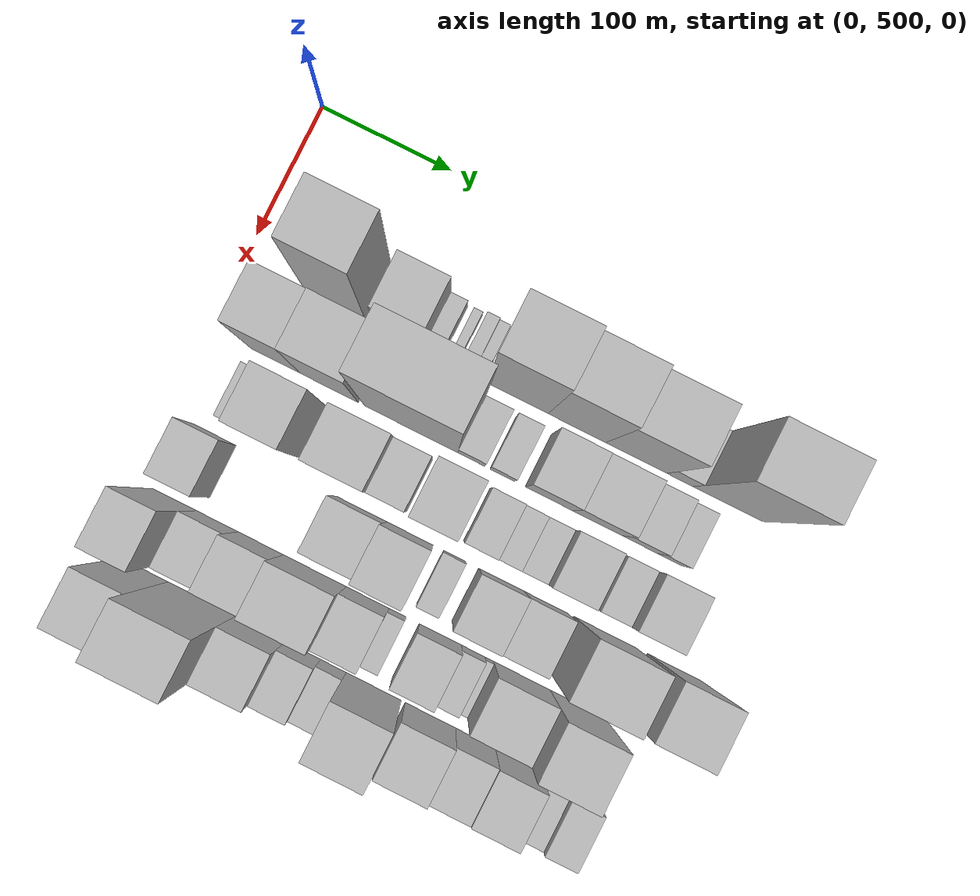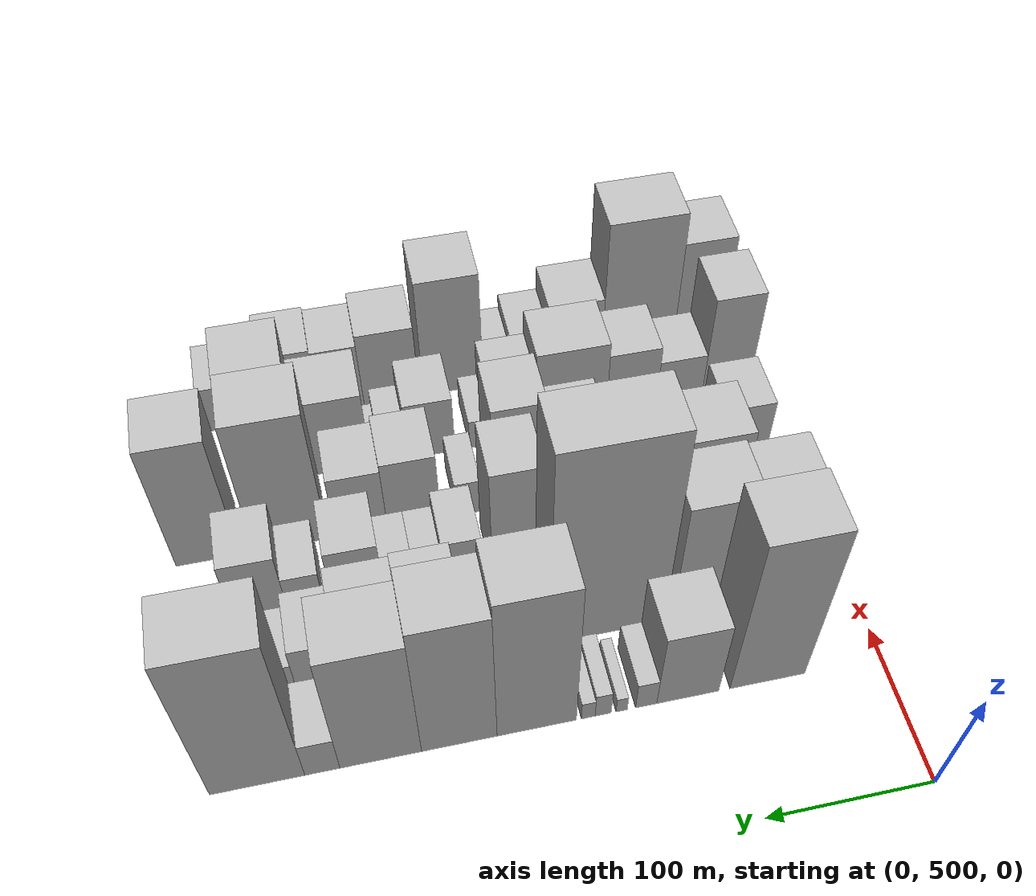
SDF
<sdf version="1.6">
 <world name="default">
  <model name="building_46">
   <static>1</static>
   <pose>100.0000 571.7592 0 0.000000 0.000000 0.000000</pose>
   <link name="link">
    <pose>0 0 76.50 0 0 0</pose>
    <collision name="collision"><geometry><box><size>40.0000 46.3501 153.0000</size></box></geometry></collision>
    <visual name="visual">
     <cast_shadows>0</cast_shadows>
     <geometry><box><size>40.0000 46.3501 153.0000</size></box></geometry>
     <material>
      <script>
       <uri>model://HANNAS_wall/materials/scripts</uri>
       <uri>model://HANNAS_wall/materials/textures</uri>
       <name>vrc/HANNAS_wall</name>
      </script>
     </material>
    </visual>
   </link>
  </model>
  <model name="building_47">
   <static>1</static>
   <pose>100.0000 620.8621 0 0.000000 0.000000 0.000000</pose>
   <link name="link">
    <pose>0 0 37.50 0 0 0</pose>
    <collision name="collision"><geometry><box><size>40.0000 37.8558 75.0000</size></box></geometry></collision>
    <visual name="visual">
     <cast_shadows>0</cast_shadows>
     <geometry><box><size>40.0000 37.8558 75.0000</size></box></geometry>
     <material>
      <script>
       <uri>model://HANNAS_wall/materials/scripts</uri>
       <uri>model://HANNAS_wall/materials/textures</uri>
       <name>vrc/HANNAS_wall</name>
      </script>
     </material>
    </visual>
   </link>
  </model>
  <model name="building_48">
   <static>1</static>
   <pose>100.0000 646.1864 0 0.000000 0.000000 0.000000</pose>
   <link name="link">
    <pose>0 0 13.50 0 0 0</pose>
    <collision name="collision"><geometry><box><size>40.0000 12.7928 27.0000</size></box></geometry></collision>
    <visual name="visual">
     <cast_shadows>0</cast_shadows>
     <geometry><box><size>40.0000 12.7928 27.0000</size></box></geometry>
     <material>
      <script>
       <uri>model://HANNAS_wall/materials/scripts</uri>
       <uri>model://HANNAS_wall/materials/textures</uri>
       <name>vrc/HANNAS_wall</name>
      </script>
     </material>
    </visual>
   </link>
  </model>
  <model name="building_49">
   <static>1</static>
   <pose>100.0000 660.9601 0 0.000000 0.000000 0.000000</pose>
   <link name="link">
    <pose>0 0 7.50 0 0 0</pose>
    <collision name="collision"><geometry><box><size>40.0000 6.7546 15.0000</size></box></geometry></collision>
    <visual name="visual">
     <cast_shadows>0</cast_shadows>
     <geometry><box><size>40.0000 6.7546 15.0000</size></box></geometry>
     <material>
      <script>
       <uri>model://HANNAS_wall/materials/scripts</uri>
       <uri>model://HANNAS_wall/materials/textures</uri>
       <name>vrc/HANNAS_wall</name>
      </script>
     </material>
    </visual>
   </link>
  </model>
  <model name="building_50">
   <static>1</static>
   <pose>100.0000 672.1434 0 0.000000 0.000000 0.000000</pose>
   <link name="link">
    <pose>0 0 12.00 0 0 0</pose>
    <collision name="collision"><geometry><box><size>40.0000 9.6119 24.0000</size></box></geometry></collision>
    <visual name="visual">
     <cast_shadows>0</cast_shadows>
     <geometry><box><size>40.0000 9.6119 24.0000</size></box></geometry>
     <material>
      <script>
       <uri>model://HANNAS_wall/materials/scripts</uri>
       <uri>model://HANNAS_wall/materials/textures</uri>
       <name>vrc/HANNAS_wall</name>
      </script>
     </material>
    </visual>
   </link>
  </model>
  <model name="building_51">
   <static>1</static>
   <pose>100.0000 681.0545 0 0.000000 0.000000 0.000000</pose>
   <link name="link">
    <pose>0 0 9.00 0 0 0</pose>
    <collision name="collision"><geometry><box><size>40.0000 8.2103 18.0000</size></box></geometry></collision>
    <visual name="visual">
     <cast_shadows>0</cast_shadows>
     <geometry><box><size>40.0000 8.2103 18.0000</size></box></geometry>
     <material>
      <script>
       <uri>model://HANNAS_wall/materials/scripts</uri>
       <uri>model://HANNAS_wall/materials/textures</uri>
       <name>vrc/HANNAS_wall</name>
      </script>
     </material>
    </visual>
   </link>
  </model>
  <model name="building_52">
   <static>1</static>
   <pose>100.0000 711.6002 0 0.000000 0.000000 0.000000</pose>
   <link name="link">
    <pose>0 0 73.50 0 0 0</pose>
    <collision name="collision"><geometry><box><size>40.0000 46.8810 147.0000</size></box></geometry></collision>
    <visual name="visual">
     <cast_shadows>0</cast_shadows>
     <geometry><box><size>40.0000 46.8810 147.0000</size></box></geometry>
     <material>
      <script>
       <uri>model://HANNAS_wall/materials/scripts</uri>
       <uri>model://HANNAS_wall/materials/textures</uri>
       <name>vrc/HANNAS_wall</name>
      </script>
     </material>
    </visual>
   </link>
  </model>
  <model name="building_53">
   <static>1</static>
   <pose>100.0000 757.0463 0 0.000000 0.000000 0.000000</pose>
   <link name="link">
    <pose>0 0 67.50 0 0 0</pose>
    <collision name="collision"><geometry><box><size>40.0000 44.0112 135.0000</size></box></geometry></collision>
    <visual name="visual">
     <cast_shadows>0</cast_shadows>
     <geometry><box><size>40.0000 44.0112 135.0000</size></box></geometry>
     <material>
      <script>
       <uri>model://HANNAS_wall/materials/scripts</uri>
       <uri>model://HANNAS_wall/materials/textures</uri>
       <name>vrc/HANNAS_wall</name>
      </script>
     </material>
    </visual>
   </link>
  </model>
  <model name="building_54">
   <static>1</static>
   <pose>100.0000 802.4805 0 0.000000 0.000000 0.000000</pose>
   <link name="link">
    <pose>0 0 61.50 0 0 0</pose>
    <collision name="collision"><geometry><box><size>40.0000 46.8574 123.0000</size></box></geometry></collision>
    <visual name="visual">
     <cast_shadows>0</cast_shadows>
     <geometry><box><size>40.0000 46.8574 123.0000</size></box></geometry>
     <material>
      <script>
       <uri>model://HANNAS_wall/materials/scripts</uri>
       <uri>model://HANNAS_wall/materials/textures</uri>
       <name>vrc/HANNAS_wall</name>
      </script>
     </material>
    </visual>
   </link>
  </model>
  <model name="building_55">
   <static>1</static>
   <pose>100.0000 835.8559 0 0.000000 0.000000 0.000000</pose>
   <link name="link">
    <pose>0 0 18.00 0 0 0</pose>
    <collision name="collision"><geometry><box><size>40.0000 19.8933 36.0000</size></box></geometry></collision>
    <visual name="visual">
     <cast_shadows>0</cast_shadows>
     <geometry><box><size>40.0000 19.8933 36.0000</size></box></geometry>
     <material>
      <script>
       <uri>model://HANNAS_wall/materials/scripts</uri>
       <uri>model://HANNAS_wall/materials/textures</uri>
       <name>vrc/HANNAS_wall</name>
      </script>
     </material>
    </visual>
   </link>
  </model>
  <model name="building_56">
   <static>1</static>
   <pose>100.0000 872.4796 0 0.000000 0.000000 0.000000</pose>
   <link name="link">
    <pose>0 0 75.00 0 0 0</pose>
    <collision name="collision"><geometry><box><size>40.0000 53.3541 150.0000</size></box></geometry></collision>
    <visual name="visual">
     <cast_shadows>0</cast_shadows>
     <geometry><box><size>40.0000 53.3541 150.0000</size></box></geometry>
     <material>
      <script>
       <uri>model://HANNAS_wall/materials/scripts</uri>
       <uri>model://HANNAS_wall/materials/textures</uri>
       <name>vrc/HANNAS_wall</name>
      </script>
     </material>
    </visual>
   </link>
  </model>
  <model name="building_97">
   <static>1</static>
   <pose>152.0000 552.0997 0 0.000000 0.000000 0.000000</pose>
   <link name="link">
    <pose>0 0 57.00 0 0 0</pose>
    <collision name="collision"><geometry><box><size>40.0000 38.0009 114.0000</size></box></geometry></collision>
    <visual name="visual">
     <cast_shadows>0</cast_shadows>
     <geometry><box><size>40.0000 38.0009 114.0000</size></box></geometry>
     <material>
      <script>
       <uri>model://HANNAS_wall/materials/scripts</uri>
       <uri>model://HANNAS_wall/materials/textures</uri>
       <name>vrc/HANNAS_wall</name>
      </script>
     </material>
    </visual>
   </link>
  </model>
  <model name="building_98">
   <static>1</static>
   <pose>152.0000 593.2633 0 0.000000 0.000000 0.000000</pose>
   <link name="link">
    <pose>0 0 58.50 0 0 0</pose>
    <collision name="collision"><geometry><box><size>40.0000 44.3261 117.0000</size></box></geometry></collision>
    <visual name="visual">
     <cast_shadows>0</cast_shadows>
     <geometry><box><size>40.0000 44.3261 117.0000</size></box></geometry>
     <material>
      <script>
       <uri>model://HANNAS_wall/materials/scripts</uri>
       <uri>model://HANNAS_wall/materials/textures</uri>
       <name>vrc/HANNAS_wall</name>
      </script>
     </material>
    </visual>
   </link>
  </model>
  <model name="building_99">
   <static>1</static>
   <pose>152.0000 656.1138 0 0.000000 0.000000 0.000000</pose>
   <link name="link">
    <pose>0 0 94.50 0 0 0</pose>
    <collision name="collision"><geometry><box><size>40.0000 71.3750 189.0000</size></box></geometry></collision>
    <visual name="visual">
     <cast_shadows>0</cast_shadows>
     <geometry><box><size>40.0000 71.3750 189.0000</size></box></geometry>
     <material>
      <script>
       <uri>model://HANNAS_wall/materials/scripts</uri>
       <uri>model://HANNAS_wall/materials/textures</uri>
       <name>vrc/HANNAS_wall</name>
      </script>
     </material>
    </visual>
   </link>
  </model>
  <model name="building_100">
   <static>1</static>
   <pose>152.0000 702.0685 0 0.000000 0.000000 0.000000</pose>
   <link name="link">
    <pose>0 0 18.00 0 0 0</pose>
    <collision name="collision"><geometry><box><size>40.0000 20.5345 36.0000</size></box></geometry></collision>
    <visual name="visual">
     <cast_shadows>0</cast_shadows>
     <geometry><box><size>40.0000 20.5345 36.0000</size></box></geometry>
     <material>
      <script>
       <uri>model://HANNAS_wall/materials/scripts</uri>
       <uri>model://HANNAS_wall/materials/textures</uri>
       <name>vrc/HANNAS_wall</name>
      </script>
     </material>
    </visual>
   </link>
  </model>
  <model name="building_101">
   <static>1</static>
   <pose>152.0000 725.8342 0 0.000000 0.000000 0.000000</pose>
   <link name="link">
    <pose>0 0 16.50 0 0 0</pose>
    <collision name="collision"><geometry><box><size>40.0000 18.9970 33.0000</size></box></geometry></collision>
    <visual name="visual">
     <cast_shadows>0</cast_shadows>
     <geometry><box><size>40.0000 18.9970 33.0000</size></box></geometry>
     <material>
      <script>
       <uri>model://HANNAS_wall/materials/scripts</uri>
       <uri>model://HANNAS_wall/materials/textures</uri>
       <name>vrc/HANNAS_wall</name>
      </script>
     </material>
    </visual>
   </link>
  </model>
  <model name="building_102">
   <static>1</static>
   <pose>152.0000 760.9908 0 0.000000 0.000000 0.000000</pose>
   <link name="link">
    <pose>0 0 34.50 0 0 0</pose>
    <collision name="collision"><geometry><box><size>40.0000 35.3162 69.0000</size></box></geometry></collision>
    <visual name="visual">
     <cast_shadows>0</cast_shadows>
     <geometry><box><size>40.0000 35.3162 69.0000</size></box></geometry>
     <material>
      <script>
       <uri>model://HANNAS_wall/materials/scripts</uri>
       <uri>model://HANNAS_wall/materials/textures</uri>
       <name>vrc/HANNAS_wall</name>
      </script>
     </material>
    </visual>
   </link>
  </model>
  <model name="building_103">
   <static>1</static>
   <pose>152.0000 797.9107 0 0.000000 0.000000 0.000000</pose>
   <link name="link">
    <pose>0 0 33.00 0 0 0</pose>
    <collision name="collision"><geometry><box><size>40.0000 38.5235 66.0000</size></box></geometry></collision>
    <visual name="visual">
     <cast_shadows>0</cast_shadows>
     <geometry><box><size>40.0000 38.5235 66.0000</size></box></geometry>
     <material>
      <script>
       <uri>model://HANNAS_wall/materials/scripts</uri>
       <uri>model://HANNAS_wall/materials/textures</uri>
       <name>vrc/HANNAS_wall</name>
      </script>
     </material>
    </visual>
   </link>
  </model>
  <model name="building_104">
   <static>1</static>
   <pose>152.0000 830.5932 0 0.000000 0.000000 0.000000</pose>
   <link name="link">
    <pose>0 0 24.00 0 0 0</pose>
    <collision name="collision"><geometry><box><size>40.0000 26.8415 48.0000</size></box></geometry></collision>
    <visual name="visual">
     <cast_shadows>0</cast_shadows>
     <geometry><box><size>40.0000 26.8415 48.0000</size></box></geometry>
     <material>
      <script>
       <uri>model://HANNAS_wall/materials/scripts</uri>
       <uri>model://HANNAS_wall/materials/textures</uri>
       <name>vrc/HANNAS_wall</name>
      </script>
     </material>
    </visual>
   </link>
  </model>
  <model name="building_105">
   <static>1</static>
   <pose>152.0000 853.7099 0 0.000000 0.000000 0.000000</pose>
   <link name="link">
    <pose>0 0 16.50 0 0 0</pose>
    <collision name="collision"><geometry><box><size>40.0000 19.3920 33.0000</size></box></geometry></collision>
    <visual name="visual">
     <cast_shadows>0</cast_shadows>
     <geometry><box><size>40.0000 19.3920 33.0000</size></box></geometry>
     <material>
      <script>
       <uri>model://HANNAS_wall/materials/scripts</uri>
       <uri>model://HANNAS_wall/materials/textures</uri>
       <name>vrc/HANNAS_wall</name>
      </script>
     </material>
    </visual>
   </link>
  </model>
  <model name="building_149">
   <static>1</static>
   <pose>204.0000 542.8291 0 0.000000 0.000000 0.000000</pose>
   <link name="link">
    <pose>0 0 13.50 0 0 0</pose>
    <collision name="collision"><geometry><box><size>40.0000 12.9760 27.0000</size></box></geometry></collision>
    <visual name="visual">
     <cast_shadows>0</cast_shadows>
     <geometry><box><size>40.0000 12.9760 27.0000</size></box></geometry>
     <material>
      <script>
       <uri>model://HANNAS_wall/materials/scripts</uri>
       <uri>model://HANNAS_wall/materials/textures</uri>
       <name>vrc/HANNAS_wall</name>
      </script>
     </material>
    </visual>
   </link>
  </model>
  <model name="building_150">
   <static>1</static>
   <pose>204.0000 577.4497 0 0.000000 0.000000 0.000000</pose>
   <link name="link">
    <pose>0 0 52.50 0 0 0</pose>
    <collision name="collision"><geometry><box><size>40.0000 38.2652 105.0000</size></box></geometry></collision>
    <visual name="visual">
     <cast_shadows>0</cast_shadows>
     <geometry><box><size>40.0000 38.2652 105.0000</size></box></geometry>
     <material>
      <script>
       <uri>model://HANNAS_wall/materials/scripts</uri>
       <uri>model://HANNAS_wall/materials/textures</uri>
       <name>vrc/HANNAS_wall</name>
      </script>
     </material>
    </visual>
   </link>
  </model>
  <model name="building_151">
   <static>1</static>
   <pose>204.0000 628.6754 0 0.000000 0.000000 0.000000</pose>
   <link name="link">
    <pose>0 0 37.50 0 0 0</pose>
    <collision name="collision"><geometry><box><size>40.0000 44.1863 75.0000</size></box></geometry></collision>
    <visual name="visual">
     <cast_shadows>0</cast_shadows>
     <geometry><box><size>40.0000 44.1863 75.0000</size></box></geometry>
     <material>
      <script>
       <uri>model://HANNAS_wall/materials/scripts</uri>
       <uri>model://HANNAS_wall/materials/textures</uri>
       <name>vrc/HANNAS_wall</name>
      </script>
     </material>
    </visual>
   </link>
  </model>
  <model name="building_152">
   <static>1</static>
   <pose>204.0000 664.7332 0 0.000000 0.000000 0.000000</pose>
   <link name="link">
    <pose>0 0 25.50 0 0 0</pose>
    <collision name="collision"><geometry><box><size>40.0000 27.9291 51.0000</size></box></geometry></collision>
    <visual name="visual">
     <cast_shadows>0</cast_shadows>
     <geometry><box><size>40.0000 27.9291 51.0000</size></box></geometry>
     <material>
      <script>
       <uri>model://HANNAS_wall/materials/scripts</uri>
       <uri>model://HANNAS_wall/materials/textures</uri>
       <name>vrc/HANNAS_wall</name>
      </script>
     </material>
    </visual>
   </link>
  </model>
  <model name="building_153">
   <static>1</static>
   <pose>204.0000 700.0523 0 0.000000 0.000000 0.000000</pose>
   <link name="link">
    <pose>0 0 54.00 0 0 0</pose>
    <collision name="collision"><geometry><box><size>40.0000 32.7092 108.0000</size></box></geometry></collision>
    <visual name="visual">
     <cast_shadows>0</cast_shadows>
     <geometry><box><size>40.0000 32.7092 108.0000</size></box></geometry>
     <material>
      <script>
       <uri>model://HANNAS_wall/materials/scripts</uri>
       <uri>model://HANNAS_wall/materials/textures</uri>
       <name>vrc/HANNAS_wall</name>
      </script>
     </material>
    </visual>
   </link>
  </model>
  <model name="building_154">
   <static>1</static>
   <pose>204.0000 734.6111 0 0.000000 0.000000 0.000000</pose>
   <link name="link">
    <pose>0 0 24.00 0 0 0</pose>
    <collision name="collision"><geometry><box><size>40.0000 24.4083 48.0000</size></box></geometry></collision>
    <visual name="visual">
     <cast_shadows>0</cast_shadows>
     <geometry><box><size>40.0000 24.4083 48.0000</size></box></geometry>
     <material>
      <script>
       <uri>model://HANNAS_wall/materials/scripts</uri>
       <uri>model://HANNAS_wall/materials/textures</uri>
       <name>vrc/HANNAS_wall</name>
      </script>
     </material>
    </visual>
   </link>
  </model>
  <model name="building_155">
   <static>1</static>
   <pose>204.0000 755.8442 0 0.000000 0.000000 0.000000</pose>
   <link name="link">
    <pose>0 0 16.50 0 0 0</pose>
    <collision name="collision"><geometry><box><size>40.0000 18.0580 33.0000</size></box></geometry></collision>
    <visual name="visual">
     <cast_shadows>0</cast_shadows>
     <geometry><box><size>40.0000 18.0580 33.0000</size></box></geometry>
     <material>
      <script>
       <uri>model://HANNAS_wall/materials/scripts</uri>
       <uri>model://HANNAS_wall/materials/textures</uri>
       <name>vrc/HANNAS_wall</name>
      </script>
     </material>
    </visual>
   </link>
  </model>
  <model name="building_156">
   <static>1</static>
   <pose>204.0000 774.4344 0 0.000000 0.000000 0.000000</pose>
   <link name="link">
    <pose>0 0 16.50 0 0 0</pose>
    <collision name="collision"><geometry><box><size>40.0000 19.1223 33.0000</size></box></geometry></collision>
    <visual name="visual">
     <cast_shadows>0</cast_shadows>
     <geometry><box><size>40.0000 19.1223 33.0000</size></box></geometry>
     <material>
      <script>
       <uri>model://HANNAS_wall/materials/scripts</uri>
       <uri>model://HANNAS_wall/materials/textures</uri>
       <name>vrc/HANNAS_wall</name>
      </script>
     </material>
    </visual>
   </link>
  </model>
  <model name="building_157">
   <static>1</static>
   <pose>204.0000 799.9505 0 0.000000 0.000000 0.000000</pose>
   <link name="link">
    <pose>0 0 30.00 0 0 0</pose>
    <collision name="collision"><geometry><box><size>40.0000 31.9100 60.0000</size></box></geometry></collision>
    <visual name="visual">
     <cast_shadows>0</cast_shadows>
     <geometry><box><size>40.0000 31.9100 60.0000</size></box></geometry>
     <material>
      <script>
       <uri>model://HANNAS_wall/materials/scripts</uri>
       <uri>model://HANNAS_wall/materials/textures</uri>
       <name>vrc/HANNAS_wall</name>
      </script>
     </material>
    </visual>
   </link>
  </model>
  <model name="building_158">
   <static>1</static>
   <pose>204.0000 831.9953 0 0.000000 0.000000 0.000000</pose>
   <link name="link">
    <pose>0 0 21.00 0 0 0</pose>
    <collision name="collision"><geometry><box><size>40.0000 22.1795 42.0000</size></box></geometry></collision>
    <visual name="visual">
     <cast_shadows>0</cast_shadows>
     <geometry><box><size>40.0000 22.1795 42.0000</size></box></geometry>
     <material>
      <script>
       <uri>model://HANNAS_wall/materials/scripts</uri>
       <uri>model://HANNAS_wall/materials/textures</uri>
       <name>vrc/HANNAS_wall</name>
      </script>
     </material>
    </visual>
   </link>
  </model>
  <model name="building_159">
   <static>1</static>
   <pose>204.0000 859.5964 0 0.000000 0.000000 0.000000</pose>
   <link name="link">
    <pose>0 0 33.00 0 0 0</pose>
    <collision name="collision"><geometry><box><size>40.0000 33.0227 66.0000</size></box></geometry></collision>
    <visual name="visual">
     <cast_shadows>0</cast_shadows>
     <geometry><box><size>40.0000 33.0227 66.0000</size></box></geometry>
     <material>
      <script>
       <uri>model://HANNAS_wall/materials/scripts</uri>
       <uri>model://HANNAS_wall/materials/textures</uri>
       <name>vrc/HANNAS_wall</name>
      </script>
     </material>
    </visual>
   </link>
  </model>
  <model name="building_203">
   <static>1</static>
   <pose>256.0000 537.7209 0 0.000000 0.000000 0.000000</pose>
   <link name="link">
    <pose>0 0 30.00 0 0 0</pose>
    <collision name="collision"><geometry><box><size>40.0000 32.6027 60.0000</size></box></geometry></collision>
    <visual name="visual">
     <cast_shadows>0</cast_shadows>
     <geometry><box><size>40.0000 32.6027 60.0000</size></box></geometry>
     <material>
      <script>
       <uri>model://HANNAS_wall/materials/scripts</uri>
       <uri>model://HANNAS_wall/materials/textures</uri>
       <name>vrc/HANNAS_wall</name>
      </script>
     </material>
    </visual>
   </link>
  </model>
  <model name="building_204">
   <static>1</static>
   <pose>256.0000 650.5957 0 0.000000 0.000000 0.000000</pose>
   <link name="link">
    <pose>0 0 33.00 0 0 0</pose>
    <collision name="collision"><geometry><box><size>40.0000 39.0490 66.0000</size></box></geometry></collision>
    <visual name="visual">
     <cast_shadows>0</cast_shadows>
     <geometry><box><size>40.0000 39.0490 66.0000</size></box></geometry>
     <material>
      <script>
       <uri>model://HANNAS_wall/materials/scripts</uri>
       <uri>model://HANNAS_wall/materials/textures</uri>
       <name>vrc/HANNAS_wall</name>
      </script>
     </material>
    </visual>
   </link>
  </model>
  <model name="building_205">
   <static>1</static>
   <pose>256.0000 687.6439 0 0.000000 0.000000 0.000000</pose>
   <link name="link">
    <pose>0 0 49.50 0 0 0</pose>
    <collision name="collision"><geometry><box><size>40.0000 35.0474 99.0000</size></box></geometry></collision>
    <visual name="visual">
     <cast_shadows>0</cast_shadows>
     <geometry><box><size>40.0000 35.0474 99.0000</size></box></geometry>
     <material>
      <script>
       <uri>model://HANNAS_wall/materials/scripts</uri>
       <uri>model://HANNAS_wall/materials/textures</uri>
       <name>vrc/HANNAS_wall</name>
      </script>
     </material>
    </visual>
   </link>
  </model>
  <model name="building_206">
   <static>1</static>
   <pose>256.0000 721.5544 0 0.000000 0.000000 0.000000</pose>
   <link name="link">
    <pose>0 0 16.50 0 0 0</pose>
    <collision name="collision"><geometry><box><size>40.0000 16.7736 33.0000</size></box></geometry></collision>
    <visual name="visual">
     <cast_shadows>0</cast_shadows>
     <geometry><box><size>40.0000 16.7736 33.0000</size></box></geometry>
     <material>
      <script>
       <uri>model://HANNAS_wall/materials/scripts</uri>
       <uri>model://HANNAS_wall/materials/textures</uri>
       <name>vrc/HANNAS_wall</name>
      </script>
     </material>
    </visual>
   </link>
  </model>
  <model name="building_207">
   <static>1</static>
   <pose>256.0000 757.2697 0 0.000000 0.000000 0.000000</pose>
   <link name="link">
    <pose>0 0 33.00 0 0 0</pose>
    <collision name="collision"><geometry><box><size>40.0000 34.6571 66.0000</size></box></geometry></collision>
    <visual name="visual">
     <cast_shadows>0</cast_shadows>
     <geometry><box><size>40.0000 34.6571 66.0000</size></box></geometry>
     <material>
      <script>
       <uri>model://HANNAS_wall/materials/scripts</uri>
       <uri>model://HANNAS_wall/materials/textures</uri>
       <name>vrc/HANNAS_wall</name>
      </script>
     </material>
    </visual>
   </link>
  </model>
  <model name="building_208">
   <static>1</static>
   <pose>256.0000 791.2052 0 0.000000 0.000000 0.000000</pose>
   <link name="link">
    <pose>0 0 30.00 0 0 0</pose>
    <collision name="collision"><geometry><box><size>40.0000 33.2138 60.0000</size></box></geometry></collision>
    <visual name="visual">
     <cast_shadows>0</cast_shadows>
     <geometry><box><size>40.0000 33.2138 60.0000</size></box></geometry>
     <material>
      <script>
       <uri>model://HANNAS_wall/materials/scripts</uri>
       <uri>model://HANNAS_wall/materials/textures</uri>
       <name>vrc/HANNAS_wall</name>
      </script>
     </material>
    </visual>
   </link>
  </model>
  <model name="building_209">
   <static>1</static>
   <pose>256.0000 836.3653 0 0.000000 0.000000 0.000000</pose>
   <link name="link">
    <pose>0 0 63.00 0 0 0</pose>
    <collision name="collision"><geometry><box><size>40.0000 47.1065 126.0000</size></box></geometry></collision>
    <visual name="visual">
     <cast_shadows>0</cast_shadows>
     <geometry><box><size>40.0000 47.1065 126.0000</size></box></geometry>
     <material>
      <script>
       <uri>model://HANNAS_wall/materials/scripts</uri>
       <uri>model://HANNAS_wall/materials/textures</uri>
       <name>vrc/HANNAS_wall</name>
      </script>
     </material>
    </visual>
   </link>
  </model>
  <model name="building_210">
   <static>1</static>
   <pose>256.0000 888.8858 0 0.000000 0.000000 0.000000</pose>
   <link name="link">
    <pose>0 0 58.50 0 0 0</pose>
    <collision name="collision"><geometry><box><size>40.0000 39.9344 117.0000</size></box></geometry></collision>
    <visual name="visual">
     <cast_shadows>0</cast_shadows>
     <geometry><box><size>40.0000 39.9344 117.0000</size></box></geometry>
     <material>
      <script>
       <uri>model://HANNAS_wall/materials/scripts</uri>
       <uri>model://HANNAS_wall/materials/textures</uri>
       <name>vrc/HANNAS_wall</name>
      </script>
     </material>
    </visual>
   </link>
  </model>
  <model name="building_243">
   <static>1</static>
   <pose>308.0000 533.5579 0 0.000000 0.000000 0.000000</pose>
   <link name="link">
    <pose>0 0 52.50 0 0 0</pose>
    <collision name="collision"><geometry><box><size>40.0000 33.3659 105.0000</size></box></geometry></collision>
    <visual name="visual">
     <cast_shadows>0</cast_shadows>
     <geometry><box><size>40.0000 33.3659 105.0000</size></box></geometry>
     <material>
      <script>
       <uri>model://HANNAS_wall/materials/scripts</uri>
       <uri>model://HANNAS_wall/materials/textures</uri>
       <name>vrc/HANNAS_wall</name>
      </script>
     </material>
    </visual>
   </link>
  </model>
  <model name="building_244">
   <static>1</static>
   <pose>308.0000 566.1924 0 0.000000 0.000000 0.000000</pose>
   <link name="link">
    <pose>0 0 27.00 0 0 0</pose>
    <collision name="collision"><geometry><box><size>40.0000 31.9032 54.0000</size></box></geometry></collision>
    <visual name="visual">
     <cast_shadows>0</cast_shadows>
     <geometry><box><size>40.0000 31.9032 54.0000</size></box></geometry>
     <material>
      <script>
       <uri>model://HANNAS_wall/materials/scripts</uri>
       <uri>model://HANNAS_wall/materials/textures</uri>
       <name>vrc/HANNAS_wall</name>
      </script>
     </material>
    </visual>
   </link>
  </model>
  <model name="building_245">
   <static>1</static>
   <pose>308.0000 599.6286 0 0.000000 0.000000 0.000000</pose>
   <link name="link">
    <pose>0 0 34.50 0 0 0</pose>
    <collision name="collision"><geometry><box><size>40.0000 34.9690 69.0000</size></box></geometry></collision>
    <visual name="visual">
     <cast_shadows>0</cast_shadows>
     <geometry><box><size>40.0000 34.9690 69.0000</size></box></geometry>
     <material>
      <script>
       <uri>model://HANNAS_wall/materials/scripts</uri>
       <uri>model://HANNAS_wall/materials/textures</uri>
       <name>vrc/HANNAS_wall</name>
      </script>
     </material>
    </visual>
   </link>
  </model>
  <model name="building_246">
   <static>1</static>
   <pose>308.0000 641.1696 0 0.000000 0.000000 0.000000</pose>
   <link name="link">
    <pose>0 0 40.50 0 0 0</pose>
    <collision name="collision"><geometry><box><size>40.0000 48.1130 81.0000</size></box></geometry></collision>
    <visual name="visual">
     <cast_shadows>0</cast_shadows>
     <geometry><box><size>40.0000 48.1130 81.0000</size></box></geometry>
     <material>
      <script>
       <uri>model://HANNAS_wall/materials/scripts</uri>
       <uri>model://HANNAS_wall/materials/textures</uri>
       <name>vrc/HANNAS_wall</name>
      </script>
     </material>
    </visual>
   </link>
  </model>
  <model name="building_247">
   <static>1</static>
   <pose>308.0000 681.5679 0 0.000000 0.000000 0.000000</pose>
   <link name="link">
    <pose>0 0 30.00 0 0 0</pose>
    <collision name="collision"><geometry><box><size>40.0000 32.6837 60.0000</size></box></geometry></collision>
    <visual name="visual">
     <cast_shadows>0</cast_shadows>
     <geometry><box><size>40.0000 32.6837 60.0000</size></box></geometry>
     <material>
      <script>
       <uri>model://HANNAS_wall/materials/scripts</uri>
       <uri>model://HANNAS_wall/materials/textures</uri>
       <name>vrc/HANNAS_wall</name>
      </script>
     </material>
    </visual>
   </link>
  </model>
  <model name="building_248">
   <static>1</static>
   <pose>308.0000 704.4266 0 0.000000 0.000000 0.000000</pose>
   <link name="link">
    <pose>0 0 13.50 0 0 0</pose>
    <collision name="collision"><geometry><box><size>40.0000 13.0337 27.0000</size></box></geometry></collision>
    <visual name="visual">
     <cast_shadows>0</cast_shadows>
     <geometry><box><size>40.0000 13.0337 27.0000</size></box></geometry>
     <material>
      <script>
       <uri>model://HANNAS_wall/materials/scripts</uri>
       <uri>model://HANNAS_wall/materials/textures</uri>
       <name>vrc/HANNAS_wall</name>
      </script>
     </material>
    </visual>
   </link>
  </model>
  <model name="building_249">
   <static>1</static>
   <pose>308.0000 737.0228 0 0.000000 0.000000 0.000000</pose>
   <link name="link">
    <pose>0 0 27.00 0 0 0</pose>
    <collision name="collision"><geometry><box><size>40.0000 32.1585 54.0000</size></box></geometry></collision>
    <visual name="visual">
     <cast_shadows>0</cast_shadows>
     <geometry><box><size>40.0000 32.1585 54.0000</size></box></geometry>
     <material>
      <script>
       <uri>model://HANNAS_wall/materials/scripts</uri>
       <uri>model://HANNAS_wall/materials/textures</uri>
       <name>vrc/HANNAS_wall</name>
      </script>
     </material>
    </visual>
   </link>
  </model>
  <model name="building_250">
   <static>1</static>
   <pose>308.0000 762.0861 0 0.000000 0.000000 0.000000</pose>
   <link name="link">
    <pose>0 0 15.00 0 0 0</pose>
    <collision name="collision"><geometry><box><size>40.0000 17.9682 30.0000</size></box></geometry></collision>
    <visual name="visual">
     <cast_shadows>0</cast_shadows>
     <geometry><box><size>40.0000 17.9682 30.0000</size></box></geometry>
     <material>
      <script>
       <uri>model://HANNAS_wall/materials/scripts</uri>
       <uri>model://HANNAS_wall/materials/textures</uri>
       <name>vrc/HANNAS_wall</name>
      </script>
     </material>
    </visual>
   </link>
  </model>
  <model name="building_251">
   <static>1</static>
   <pose>308.0000 774.3585 0 0.000000 0.000000 0.000000</pose>
   <link name="link">
    <pose>0 0 7.50 0 0 0</pose>
    <collision name="collision"><geometry><box><size>40.0000 6.5765 15.0000</size></box></geometry></collision>
    <visual name="visual">
     <cast_shadows>0</cast_shadows>
     <geometry><box><size>40.0000 6.5765 15.0000</size></box></geometry>
     <material>
      <script>
       <uri>model://HANNAS_wall/materials/scripts</uri>
       <uri>model://HANNAS_wall/materials/textures</uri>
       <name>vrc/HANNAS_wall</name>
      </script>
     </material>
    </visual>
   </link>
  </model>
  <model name="building_252">
   <static>1</static>
   <pose>308.0000 799.1226 0 0.000000 0.000000 0.000000</pose>
   <link name="link">
    <pose>0 0 36.00 0 0 0</pose>
    <collision name="collision"><geometry><box><size>40.0000 42.9516 72.0000</size></box></geometry></collision>
    <visual name="visual">
     <cast_shadows>0</cast_shadows>
     <geometry><box><size>40.0000 42.9516 72.0000</size></box></geometry>
     <material>
      <script>
       <uri>model://HANNAS_wall/materials/scripts</uri>
       <uri>model://HANNAS_wall/materials/textures</uri>
       <name>vrc/HANNAS_wall</name>
      </script>
     </material>
    </visual>
   </link>
  </model>
  <model name="building_253">
   <static>1</static>
   <pose>308.0000 841.3993 0 0.000000 0.000000 0.000000</pose>
   <link name="link">
    <pose>0 0 55.50 0 0 0</pose>
    <collision name="collision"><geometry><box><size>40.0000 41.6019 111.0000</size></box></geometry></collision>
    <visual name="visual">
     <cast_shadows>0</cast_shadows>
     <geometry><box><size>40.0000 41.6019 111.0000</size></box></geometry>
     <material>
      <script>
       <uri>model://HANNAS_wall/materials/scripts</uri>
       <uri>model://HANNAS_wall/materials/textures</uri>
       <name>vrc/HANNAS_wall</name>
      </script>
     </material>
    </visual>
   </link>
  </model>
  <model name="building_293">
   <static>1</static>
   <pose>360.0000 537.0481 0 0.000000 0.000000 0.000000</pose>
   <link name="link">
    <pose>0 0 52.50 0 0 0</pose>
    <collision name="collision"><geometry><box><size>40.0000 35.8713 105.0000</size></box></geometry></collision>
    <visual name="visual">
     <cast_shadows>0</cast_shadows>
     <geometry><box><size>40.0000 35.8713 105.0000</size></box></geometry>
     <material>
      <script>
       <uri>model://HANNAS_wall/materials/scripts</uri>
       <uri>model://HANNAS_wall/materials/textures</uri>
       <name>vrc/HANNAS_wall</name>
      </script>
     </material>
    </visual>
   </link>
  </model>
  <model name="building_294">
   <static>1</static>
   <pose>360.0000 580.9445 0 0.000000 0.000000 0.000000</pose>
   <link name="link">
    <pose>0 0 66.00 0 0 0</pose>
    <collision name="collision"><geometry><box><size>40.0000 51.9213 132.0000</size></box></geometry></collision>
    <visual name="visual">
     <cast_shadows>0</cast_shadows>
     <geometry><box><size>40.0000 51.9213 132.0000</size></box></geometry>
     <material>
      <script>
       <uri>model://HANNAS_wall/materials/scripts</uri>
       <uri>model://HANNAS_wall/materials/textures</uri>
       <name>vrc/HANNAS_wall</name>
      </script>
     </material>
    </visual>
   </link>
  </model>
  <model name="building_295">
   <static>1</static>
   <pose>360.0000 626.0344 0 0.000000 0.000000 0.000000</pose>
   <link name="link">
    <pose>0 0 33.00 0 0 0</pose>
    <collision name="collision"><geometry><box><size>40.0000 38.2586 66.0000</size></box></geometry></collision>
    <visual name="visual">
     <cast_shadows>0</cast_shadows>
     <geometry><box><size>40.0000 38.2586 66.0000</size></box></geometry>
     <material>
      <script>
       <uri>model://HANNAS_wall/materials/scripts</uri>
       <uri>model://HANNAS_wall/materials/textures</uri>
       <name>vrc/HANNAS_wall</name>
      </script>
     </material>
    </visual>
   </link>
  </model>
  <model name="building_296">
   <static>1</static>
   <pose>360.0000 658.6214 0 0.000000 0.000000 0.000000</pose>
   <link name="link">
    <pose>0 0 22.50 0 0 0</pose>
    <collision name="collision"><geometry><box><size>40.0000 26.9154 45.0000</size></box></geometry></collision>
    <visual name="visual">
     <cast_shadows>0</cast_shadows>
     <geometry><box><size>40.0000 26.9154 45.0000</size></box></geometry>
     <material>
      <script>
       <uri>model://HANNAS_wall/materials/scripts</uri>
       <uri>model://HANNAS_wall/materials/textures</uri>
       <name>vrc/HANNAS_wall</name>
      </script>
     </material>
    </visual>
   </link>
  </model>
  <model name="building_297">
   <static>1</static>
   <pose>360.0000 681.8081 0 0.000000 0.000000 0.000000</pose>
   <link name="link">
    <pose>0 0 16.50 0 0 0</pose>
    <collision name="collision"><geometry><box><size>40.0000 19.4579 33.0000</size></box></geometry></collision>
    <visual name="visual">
     <cast_shadows>0</cast_shadows>
     <geometry><box><size>40.0000 19.4579 33.0000</size></box></geometry>
     <material>
      <script>
       <uri>model://HANNAS_wall/materials/scripts</uri>
       <uri>model://HANNAS_wall/materials/textures</uri>
       <name>vrc/HANNAS_wall</name>
      </script>
     </material>
    </visual>
   </link>
  </model>
  <model name="building_298">
   <static>1</static>
   <pose>360.0000 712.4804 0 0.000000 0.000000 0.000000</pose>
   <link name="link">
    <pose>0 0 54.00 0 0 0</pose>
    <collision name="collision"><geometry><box><size>40.0000 41.8868 108.0000</size></box></geometry></collision>
    <visual name="visual">
     <cast_shadows>0</cast_shadows>
     <geometry><box><size>40.0000 41.8868 108.0000</size></box></geometry>
     <material>
      <script>
       <uri>model://HANNAS_wall/materials/scripts</uri>
       <uri>model://HANNAS_wall/materials/textures</uri>
       <name>vrc/HANNAS_wall</name>
      </script>
     </material>
    </visual>
   </link>
  </model>
  <model name="building_299">
   <static>1</static>
   <pose>360.0000 755.6303 0 0.000000 0.000000 0.000000</pose>
   <link name="link">
    <pose>0 0 34.50 0 0 0</pose>
    <collision name="collision"><geometry><box><size>40.0000 38.4129 69.0000</size></box></geometry></collision>
    <visual name="visual">
     <cast_shadows>0</cast_shadows>
     <geometry><box><size>40.0000 38.4129 69.0000</size></box></geometry>
     <material>
      <script>
       <uri>model://HANNAS_wall/materials/scripts</uri>
       <uri>model://HANNAS_wall/materials/textures</uri>
       <name>vrc/HANNAS_wall</name>
      </script>
     </material>
    </visual>
   </link>
  </model>
  <model name="building_300">
   <static>1</static>
   <pose>360.0000 790.0227 0 0.000000 0.000000 0.000000</pose>
   <link name="link">
    <pose>0 0 30.00 0 0 0</pose>
    <collision name="collision"><geometry><box><size>40.0000 30.3721 60.0000</size></box></geometry></collision>
    <visual name="visual">
     <cast_shadows>0</cast_shadows>
     <geometry><box><size>40.0000 30.3721 60.0000</size></box></geometry>
     <material>
      <script>
       <uri>model://HANNAS_wall/materials/scripts</uri>
       <uri>model://HANNAS_wall/materials/textures</uri>
       <name>vrc/HANNAS_wall</name>
      </script>
     </material>
    </visual>
   </link>
  </model>
  <model name="building_301">
   <static>1</static>
   <pose>360.0000 822.3423 0 0.000000 0.000000 0.000000</pose>
   <link name="link">
    <pose>0 0 31.50 0 0 0</pose>
    <collision name="collision"><geometry><box><size>40.0000 34.2671 63.0000</size></box></geometry></collision>
    <visual name="visual">
     <cast_shadows>0</cast_shadows>
     <geometry><box><size>40.0000 34.2671 63.0000</size></box></geometry>
     <material>
      <script>
       <uri>model://HANNAS_wall/materials/scripts</uri>
       <uri>model://HANNAS_wall/materials/textures</uri>
       <name>vrc/HANNAS_wall</name>
      </script>
     </material>
    </visual>
   </link>
  </model>
  <model name="building_302">
   <static>1</static>
   <pose>360.0000 849.0260 0 0.000000 0.000000 0.000000</pose>
   <link name="link">
    <pose>0 0 16.50 0 0 0</pose>
    <collision name="collision"><geometry><box><size>40.0000 19.1001 33.0000</size></box></geometry></collision>
    <visual name="visual">
     <cast_shadows>0</cast_shadows>
     <geometry><box><size>40.0000 19.1001 33.0000</size></box></geometry>
     <material>
      <script>
       <uri>model://HANNAS_wall/materials/scripts</uri>
       <uri>model://HANNAS_wall/materials/textures</uri>
       <name>vrc/HANNAS_wall</name>
      </script>
     </material>
    </visual>
   </link>
  </model>
  <model name="building_303">
   <static>1</static>
   <pose>360.0000 870.5250 0 0.000000 0.000000 0.000000</pose>
   <link name="link">
    <pose>0 0 21.00 0 0 0</pose>
    <collision name="collision"><geometry><box><size>40.0000 23.8980 42.0000</size></box></geometry></collision>
    <visual name="visual">
     <cast_shadows>0</cast_shadows>
     <geometry><box><size>40.0000 23.8980 42.0000</size></box></geometry>
     <material>
      <script>
       <uri>model://HANNAS_wall/materials/scripts</uri>
       <uri>model://HANNAS_wall/materials/textures</uri>
       <name>vrc/HANNAS_wall</name>
      </script>
     </material>
    </visual>
   </link>
  </model>
 </world>
</sdf>
